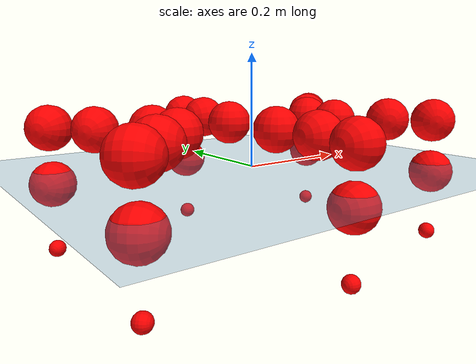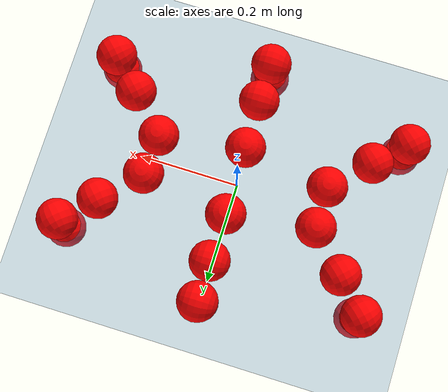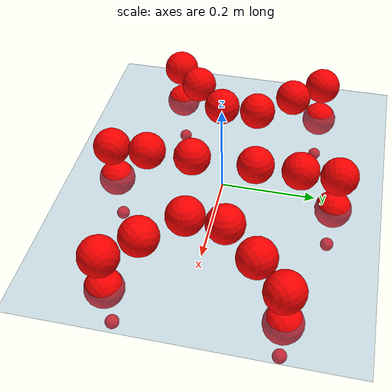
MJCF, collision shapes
<mujoco model="Golem">
  <compiler angle="radian" assetdir="assets" balanceinertia="true" inertiafromgeom="false"/>

  <option timestep="0.005" density="1.2" viscosity="2e-05"/>

  <size nkey="1"/>

  <visual>
    <quality shadowsize="8192"/>
    <map shadowclip="0.5"/>
  </visual>

  <default>
    <default class="/">
      <joint armature="0.01" damping="0.01" frictionloss="0.01"/>
      <geom contype="0" conaffinity="0" group="1" solref="-1000 -80"/>
      <site size="0.01 0.005 0.005" group="5"/>
      <general forcelimited="true" biastype="affine" gainprm="25" biasprm="0 -25 -0.5"/>
      <default class="visual">
        <geom type="mesh" group="2"/>
      </default>
      <default class="collision">
        <geom group="3"/>
      </default>
      <default class="foot">
        <geom size="0.01 0 0" condim="6" group="4" priority="1" solimp="0.015 1 0.01"/>
      </default>
      <default class="reward_collision_sphere">
        <geom group="5" rgba="1 0 0 1"/>
      </default>
    </default>
  </default>

  <asset>
    <texture type="skybox" colorspace="auto" name="//unnamed_texture_0" builtin="gradient" rgb1="0.95 0.95 0.95" rgb2="0.95 0.95 0.95" width="100" height="600"/>
    <texture type="2d" colorspace="auto" name="texplane" builtin="checker" rgb1="0.345 0.575 0.748" rgb2="0.345 0.575 0.748" markrgb="1 1 1" width="512" height="512"/>
    <material name="MatPlane" class="/" texture="texplane" texuniform="true" texrepeat="2 2" specular="0.9"/>
    <mesh name="body" class="/" file="body.stl" scale="0.001 0.001 0.001"/>
    <mesh name="coxa" class="/" file="coxa.stl" scale="0.001 0.001 0.001"/>
    <mesh name="femur" class="/" file="femur.stl" scale="0.001 0.001 0.001"/>
    <mesh name="tibia" class="/" file="tibia.stl" scale="0.001 0.001 0.001"/>
    <mesh name="tarsus" class="/" file="tarsus.stl" scale="0.001 0.001 0.001"/>
  </asset>

  <worldbody>
    <geom name="floor" class="/" size="100 100 0.125" type="plane" group="0" material="MatPlane"/>
    <light name="toplight_shadow" class="/" pos="0 0 5" dir="0.0990148 0.0990148 -0.990148" type="directional" ambient="0.04 0.04 0.04" diffuse="0.55 0.55 0.55" specular="0.12 0.12 0.12"/>
    <light name="toplight_fill" class="/" pos="0 0 5" dir="0.0990148 0.0990148 -0.990148" type="directional" castshadow="false" ambient="0.04 0.04 0.04" diffuse="0.3 0.3 0.3" specular="0.08 0.08 0.08"/>
    <body name="trunk" pos="0.00112553 0.00264355 0.00238799" quat="1 -4.86506e-05 -1.97848e-05 -0.000124757">
      <inertial pos="-0.000998647 7.48935e-05 -0.00393501" quat="0.99999 -0.00401507 0.000459579 -0.00203018" mass="3.88282" diaginertia="0.0157291 0.00267532 0.0178993"/>
      <joint name="//unnamed_joint_0" type="free"/>
      <geom name="//unnamed_geom_1" class="/" pos="0 0 0.0718131" quat="1 0 0 0" type="mesh" rgba="0.9 0.9 0.9 1" mesh="body"/>
      <site name="imu" class="/" pos="0.14758 -0.0128786 0.117507" size="0.00993067"/>
      <camera name="track" class="/" pos="0 -1.52615 0" quat="0.707107 0.707107 0 0" mode="trackcom"/>
      <camera name="ego_camera" class="/" pos="0.142226 0 0.112208" quat="-0.5 -0.5 0.5 0.5"/>
      <body name="coxa_RR" pos="-0.193862 -0.0613026 0.0745535" quat="0.381674 0.000692909 4.68062e-05 -0.924297">
        <inertial pos="-0.000161185 -0.00227345 0.00266794" quat="0.999948 0.00553577 -0.00236944 0.00823729" mass="0.201786" diaginertia="0.0154993 0.00254117 0.017818"/>
        <joint name="coxa_joint_RR" class="/" pos="0 0 0" axis="-0.00248511 0.000117065 -0.999997" stiffness="0.00359663" range="-3.08323 3.13299" armature="0.0100996" damping="0.00293715" frictionloss="0.0104347"/>
        <geom name="//unnamed_geom_2" class="/" type="mesh" rgba="0.2 0.2 0.2 1" mesh="coxa"/>
        <geom name="//unnamed_geom_3" class="reward_collision_sphere" size="0.0397227" pos="-0.0328215 0 0"/>
        <body name="femur_RR" pos="0.0669828 9.98358e-05 -0.000243632" quat="0.499521 -0.499355 0.50092 0.500202">
          <inertial pos="-0.00286742 -0.00095628 0.000220315" quat="1 -4.63583e-06 -2.94307e-05 3.84794e-05" mass="0.200224" diaginertia="0.0160453 0.00266185 0.0182688"/>
          <joint name="femur_joint_RR" class="/" pos="0 0 0" axis="-0.00136519 0.00339293 -0.999993" stiffness="0.00836069" range="-3.19195 3.1854" armature="0.00851815" damping="0.000347908" frictionloss="0.00992042"/>
          <geom name="//unnamed_geom_4" class="/" type="mesh" rgba="0.9 0.9 0.9 1" mesh="femur"/>
          <geom name="//unnamed_geom_5" class="reward_collision_sphere" size="0.0397227"/>
          <body name="tibia_RR" pos="0.0018705 -0.0817612 -0.000865529" quat="0.00029528 1 0.000137313 -7.11403e-05">
            <inertial pos="0.00179229 0.000653214 -0.000347817" quat="0.99994 -0.0011804 0.00718147 0.00820938" mass="0.193955" diaginertia="0.0160276 0.00274758 0.0187391"/>
            <joint name="tibia_joint_RR" class="/" pos="0 0 0" axis="0.0140285 0.000847587 0.999901" range="-3.17588 3.10242" armature="0.0103647" damping="0.021308" frictionloss="0.00944777"/>
            <geom name="//unnamed_geom_6" class="/" type="mesh" rgba="0.2 0.2 0.2 1" mesh="tibia"/>
            <geom name="//unnamed_geom_7" class="reward_collision_sphere" size="0.0397227"/>
            <body name="tarsus_RR" pos="0.0961331 -0.00212449 -0.000358374" quat="1 -8.26773e-05 0.000475127 0.000249721">
              <inertial pos="0.0696605 0.00219567 -0.00284899" quat="0.496894 0.497669 0.497445 0.507908" mass="0.204638" diaginertia="0.0156874 0.0027633 0.0182834"/>
              <joint name="tarsus_joint_RR" class="/" pos="0 0 0" axis="0.00480771 -9.68502e-05 0.999988" range="-3.09161 3.14606" armature="0.0103413" damping="0.0440793" frictionloss="0.010942"/>
              <geom name="//unnamed_geom_8" class="/" type="mesh" rgba="0.9 0.9 0.9 1" mesh="tarsus"/>
              <geom name="foot_1" class="foot" size="0.0103653" pos="0.122533 0 0" quat="0 -0.707107 0 0.707107"/>
              <geom name="//unnamed_geom_10" class="reward_collision_sphere" size="0.0397227"/>
              <geom name="//unnamed_geom_11" class="reward_collision_sphere" size="0.014896" pos="0.11761 0 0"/>
              <site name="foot_1" class="foot" pos="0.122533 0 0" quat="0 -0.707107 0 0.707107" size="0.00993067"/>
            </body>
          </body>
        </body>
      </body>
      <body name="coxa_RM" pos="0.00141613 -0.099415 0.07019" quat="0.707277 -4.84637e-05 1.9257e-06 -0.706936">
        <inertial pos="0.000857973 0.00200147 0.000666544" quat="1 -4.11669e-05 -5.43266e-05 -0.00036588" mass="0.189372" diaginertia="0.0156674 0.00259358 0.0177455"/>
        <joint name="coxa_joint_RM" class="/" pos="0 0 0" axis="0.0043099 -0.000846567 -0.99999" range="-3.12871 3.13461" armature="0.00979467" damping="0.0130783" frictionloss="0.00892313"/>
        <geom name="//unnamed_geom_12" class="/" type="mesh" rgba="0.2 0.2 0.2 1" mesh="coxa"/>
        <geom name="//unnamed_geom_13" class="reward_collision_sphere" size="0.0397227" pos="-0.0328215 0 0"/>
        <body name="femur_RM" pos="0.0644985 0.00199241 0.000725668" quat="0.500098 -0.500359 0.499921 0.499622">
          <inertial pos="-0.000708194 -0.00246649 0.00281145" quat="0.999999 0.000538409 0.00109053 -0.00061963" mass="0.200658" diaginertia="0.0153592 0.00260021 0.0179393"/>
          <joint name="femur_joint_RM" class="/" pos="0 0 0" axis="0.00146292 -0.00131883 -0.999998" range="-3.14388 3.09825" armature="0.010488" damping="0" frictionloss="0.0100427"/>
          <geom name="//unnamed_geom_14" class="/" type="mesh" rgba="0.9 0.9 0.9 1" mesh="femur"/>
          <geom name="//unnamed_geom_15" class="reward_collision_sphere" size="0.0397227"/>
          <body name="tibia_RM" pos="0.00325254 -0.0789232 -0.00109554" quat="-0.000172225 1 9.35878e-05 -0.000157258">
            <inertial pos="-0.00229814 -0.00248175 0.000869094" quat="0.999938 -0.0108262 -0.00174727 -0.00213605" mass="0.197325" diaginertia="0.0157227 0.00258625 0.0172866"/>
            <joint name="tibia_joint_RM" class="/" pos="0 0 0" axis="0.000988626 0.0030551 0.999995" range="-3.15018 3.17625" armature="0.0109616" damping="0.0226501" frictionloss="0.0110853"/>
            <geom name="//unnamed_geom_16" class="/" type="mesh" rgba="0.2 0.2 0.2 1" mesh="tibia"/>
            <geom name="//unnamed_geom_17" class="reward_collision_sphere" size="0.0397227"/>
            <body name="tarsus_RM" pos="0.0937294 -0.00102457 0.000626722" quat="1 -4.18839e-05 -2.9641e-06 8.05816e-06">
              <inertial pos="0.0663622 -0.000991538 0.00102274" quat="0.501647 0.497587 0.503342 0.497397" mass="0.202025" diaginertia="0.016436 0.00270041 0.0184355"/>
              <joint name="tarsus_joint_RM" class="/" pos="0 0 0" axis="0.00100982 0.000383724 0.999999" range="-3.13714 3.13908" armature="0.00849257" damping="0.00548683" frictionloss="0.00939919"/>
              <geom name="//unnamed_geom_18" class="/" type="mesh" rgba="0.9 0.9 0.9 1" mesh="tarsus"/>
              <geom name="foot_2" class="foot" size="0.00897318" pos="0.122533 0 0" quat="0 -0.707107 0 0.707107"/>
              <geom name="//unnamed_geom_20" class="reward_collision_sphere" size="0.0397227"/>
              <geom name="//unnamed_geom_21" class="reward_collision_sphere" size="0.014896" pos="0.11761 0 0"/>
              <site name="foot_2" class="foot" pos="0.122533 0 0" quat="0 -0.707107 0 0.707107" size="0.00993067"/>
            </body>
          </body>
        </body>
      </body>
      <body name="coxa_RF" pos="0.191585 -0.0624494 0.0727559" quat="0.923901 -0.000193714 -0.000357963 -0.382631">
        <inertial pos="0.00288505 -0.000446239 -0.000483741" quat="0.999986 -0.00382924 -0.00223799 -0.00289403" mass="0.194911" diaginertia="0.0161714 0.0025719 0.0172126"/>
        <joint name="coxa_joint_RF" class="/" pos="0 0 0" axis="-0.00185169 0.00787893 -0.999967" range="-3.1883 3.16089" armature="0.00892324" damping="0.0128728" frictionloss="0.0104182"/>
        <geom name="//unnamed_geom_22" class="/" type="mesh" rgba="0.2 0.2 0.2 1" mesh="coxa"/>
        <geom name="//unnamed_geom_23" class="reward_collision_sphere" size="0.0397227" pos="-0.0328215 0 0"/>
        <body name="femur_RF" pos="0.0663474 -0.00109032 0.00312906" quat="0.500708 -0.499517 0.500265 0.499509">
          <inertial pos="0.00119898 0.000629458 -0.00267847" quat="1 -0.000648874 0.00036528 -0.000344044" mass="0.191781" diaginertia="0.0155816 0.00268829 0.0178906"/>
          <joint name="femur_joint_RF" class="/" pos="0 0 0" axis="-0.00206624 -7.79222e-05 -0.999998" range="-3.08501 3.12749" armature="0.0112654" damping="0" frictionloss="0.0103965"/>
          <geom name="//unnamed_geom_24" class="/" type="mesh" rgba="0.9 0.9 0.9 1" mesh="femur"/>
          <geom name="//unnamed_geom_25" class="reward_collision_sphere" size="0.0397227"/>
          <body name="tibia_RF" pos="0.000770599 -0.0824642 0.000950769" quat="5.52581e-06 1 -3.67891e-07 -1.36702e-05">
            <inertial pos="0.000722183 0.00276429 -0.000231614" quat="0.999999 0.000562133 0.000861921 -0.000136633" mass="0.196674" diaginertia="0.0161507 0.00252543 0.0185113"/>
            <joint name="tibia_joint_RF" class="/" pos="0 0 0" axis="-0.00320367 0.00344249 0.999989" stiffness="0.000655669" range="-3.16123 3.14908" armature="0.0105762" damping="0.0028494" frictionloss="0.00853987"/>
            <geom name="//unnamed_geom_26" class="/" type="mesh" rgba="0.2 0.2 0.2 1" mesh="tibia"/>
            <geom name="//unnamed_geom_27" class="reward_collision_sphere" size="0.0397227"/>
            <body name="tarsus_RF" pos="0.0963947 0.00145513 0.000696649" quat="0.999999 -0.000863031 0.000687726 -0.000609361">
              <inertial pos="0.0637477 -0.00245133 0.000295493" quat="0.503619 0.502844 0.491295 0.502141" mass="0.190537" diaginertia="0.0163104 0.00253935 0.0178605"/>
              <joint name="tarsus_joint_RF" class="/" pos="0 0 0" axis="-0.00643762 -0.0121503 0.999905" stiffness="0.00673155" range="-3.09128 3.1597" armature="0.0107206" damping="0.0010063" frictionloss="0.00993312"/>
              <geom name="//unnamed_geom_28" class="/" type="mesh" rgba="0.9 0.9 0.9 1" mesh="tarsus"/>
              <geom name="foot_3" class="foot" size="0.0096476" pos="0.122533 0 0" quat="0 -0.707107 0 0.707107"/>
              <geom name="//unnamed_geom_30" class="reward_collision_sphere" size="0.0397227"/>
              <geom name="//unnamed_geom_31" class="reward_collision_sphere" size="0.014896" pos="0.11761 0 0"/>
              <site name="foot_3" class="foot" pos="0.122533 0 0" quat="0 -0.707107 0 0.707107" size="0.00993067"/>
            </body>
          </body>
        </body>
      </body>
      <body name="coxa_LR" pos="-0.195134 0.0661497 0.0734981" quat="0.382541 0.000552388 -0.000396637 0.923938">
        <inertial pos="-0.000178349 -0.00247347 0.00112256" quat="0.999902 -0.0112028 0.00139942 -0.0083041" mass="0.190306" diaginertia="0.0150365 0.00259098 0.0172898"/>
        <joint name="coxa_joint_LR" class="/" pos="0 0 0" axis="-0.00726951 -0.0104869 -0.999919" range="-3.17132 3.18686" armature="0.00864738" damping="0.00781369" frictionloss="0.0104191"/>
        <geom name="//unnamed_geom_32" class="/" type="mesh" rgba="0.2 0.2 0.2 1" mesh="coxa"/>
        <geom name="//unnamed_geom_33" class="reward_collision_sphere" size="0.0397227" pos="-0.0328215 0 0"/>
        <body name="femur_LR" pos="0.0677594 -0.00180029 -0.00353052" quat="0.500742 -0.50043 0.499943 0.498884">
          <inertial pos="0.000716984 0.000270135 -0.000638936" quat="0.999926 0.00263686 0.00966378 -0.00695926" mass="0.192355" diaginertia="0.0157289 0.00262255 0.0184357"/>
          <joint name="femur_joint_LR" class="/" pos="0 0 0" axis="0.0105577 0.0024398 0.999941" range="-3.09876 3.0827" armature="0.0109741" damping="0" frictionloss="0.0104638"/>
          <geom name="//unnamed_geom_34" class="/" type="mesh" rgba="0.9 0.9 0.9 1" mesh="femur"/>
          <geom name="//unnamed_geom_35" class="reward_collision_sphere" size="0.0397227"/>
          <body name="tibia_LR" pos="-0.000795267 -0.0842079 -0.00341783" quat="-0.000133405 0.999999 0.00104987 0.000201947">
            <inertial pos="0.00130762 -0.00197775 0.00277421" quat="0.99993 0.000353178 -0.00869707 -0.0080141" mass="0.196248" diaginertia="0.0162153 0.00264489 0.0177758"/>
            <joint name="tibia_joint_LR" class="/" pos="0 0 0" axis="0.00263267 0.000608963 -0.999996" range="-3.19651 3.18289" armature="0.00887164" damping="0.00259586" frictionloss="0.0111615"/>
            <geom name="//unnamed_geom_36" class="/" type="mesh" rgba="0.2 0.2 0.2 1" mesh="tibia"/>
            <geom name="//unnamed_geom_37" class="reward_collision_sphere" size="0.0397227"/>
            <body name="tarsus_LR" pos="0.0984176 0.000555673 0.00139025" quat="0.999999 0.000977067 0.000450487 0.000839524">
              <inertial pos="0.069007 0.000972158 0.000347035" quat="0.501791 0.491088 0.508862 0.498094" mass="0.20304" diaginertia="0.0159409 0.00265581 0.0181778"/>
              <joint name="tarsus_joint_LR" class="/" pos="0 0 0" axis="-0.00395039 0.00660447 -0.99997" range="-3.19413 3.14698" armature="0.00992811" damping="0.0276061" frictionloss="0.0086082"/>
              <geom name="//unnamed_geom_38" class="/" type="mesh" rgba="0.9 0.9 0.9 1" mesh="tarsus"/>
              <geom name="foot_4" class="foot" size="0.0101857" pos="0.122533 0 0" quat="0.707107 0 -0.707107 0"/>
              <geom name="//unnamed_geom_40" class="reward_collision_sphere" size="0.0397227"/>
              <geom name="//unnamed_geom_41" class="reward_collision_sphere" size="0.014896" pos="0.11761 0 0"/>
              <site name="foot_4" class="foot" pos="0.122533 0 0" quat="0.707107 0 -0.707107 0" size="0.00993067"/>
            </body>
          </body>
        </body>
      </body>
      <body name="coxa_LM" pos="-0.000625529 0.10116 0.0705461" quat="0.706782 0.000317832 -0.000735852 0.707431">
        <inertial pos="-0.00236491 -0.000328277 -0.00260193" quat="1 -7.23889e-05 -0.000142108 0.000533929" mass="0.190782" diaginertia="0.0149361 0.00247821 0.0181299"/>
        <joint name="coxa_joint_LM" class="/" pos="0 0 0" axis="0.00275909 0.00383425 -0.999989" range="-3.13502 3.1422" armature="0.0111788" damping="0.0035059" frictionloss="0.00866023"/>
        <geom name="//unnamed_geom_42" class="/" type="mesh" rgba="0.2 0.2 0.2 1" mesh="coxa"/>
        <geom name="//unnamed_geom_43" class="reward_collision_sphere" size="0.0397227" pos="-0.0328215 0 0"/>
        <body name="femur_LM" pos="0.0614459 -0.00232535 0.0029897" quat="0.499389 -0.500151 0.500365 0.500095">
          <inertial pos="0.00296726 0.00167782 0.00254874" quat="0.999998 -0.00176162 -6.66818e-05 0.00123817" mass="0.196186" diaginertia="0.0159954 0.00258847 0.0175207"/>
          <joint name="femur_joint_LM" class="/" pos="0 0 0" axis="-0.00120147 0.00052643 0.999999" range="-3.16192 3.083" armature="0.0108129" damping="0" frictionloss="0.0112414"/>
          <geom name="//unnamed_geom_44" class="/" type="mesh" rgba="0.9 0.9 0.9 1" mesh="femur"/>
          <geom name="//unnamed_geom_45" class="reward_collision_sphere" size="0.0397227"/>
          <body name="tibia_LM" pos="0.000944079 -0.0791532 0.000687536" quat="-0.00013327 1 -0.000208838 0.000440245">
            <inertial pos="-0.0020544 -0.00237963 0.00212003" quat="0.99995 0.00537868 0.0068717 0.0049238" mass="0.192548" diaginertia="0.0156227 0.00256337 0.0171361"/>
            <joint name="tibia_joint_LM" class="/" pos="0 0 0" axis="0.000457083 0.0132236 -0.999912" range="-3.14321 3.08565" armature="0.0102791" damping="0" frictionloss="0.00983285"/>
            <geom name="//unnamed_geom_46" class="/" type="mesh" rgba="0.2 0.2 0.2 1" mesh="tibia"/>
            <geom name="//unnamed_geom_47" class="reward_collision_sphere" size="0.0397227"/>
            <body name="tarsus_LM" pos="0.0951055 -0.00237088 0.00220845" quat="1 -0.000140343 -0.000173724 0.000249595">
              <inertial pos="0.063151 0.000637996 -0.00280967" quat="0.506725 0.502241 0.490579 0.500316" mass="0.199425" diaginertia="0.015625 0.0024562 0.0169008"/>
              <joint name="tarsus_joint_LM" class="/" pos="0 0 0" axis="0.0111315 0.00501564 -0.999925" range="-3.12938 3.08453" armature="0.00928961" damping="0.013946" frictionloss="0.00989403"/>
              <geom name="//unnamed_geom_48" class="/" type="mesh" rgba="0.9 0.9 0.9 1" mesh="tarsus"/>
              <geom name="foot_5" class="foot" size="0.0102517" pos="0.122533 0 0" quat="0.707107 0 -0.707107 0"/>
              <geom name="//unnamed_geom_50" class="reward_collision_sphere" size="0.0397227"/>
              <geom name="//unnamed_geom_51" class="reward_collision_sphere" size="0.014896" pos="0.11761 0 0"/>
              <site name="foot_5" class="foot" pos="0.122533 0 0" quat="0.707107 0 -0.707107 0" size="0.00993067"/>
            </body>
          </body>
        </body>
      </body>
      <body name="coxa_LF" pos="0.196438 0.063675 0.0734318" quat="0.923451 0.000273511 -0.00042242 0.383716">
        <inertial pos="0.000438734 0.000377565 0.00122551" quat="0.999949 -0.00324467 0.00643075 0.00708859" mass="0.199255" diaginertia="0.0151502 0.00263679 0.0170918"/>
        <joint name="coxa_joint_LF" class="/" pos="0 0 0" axis="-0.000405925 -0.0112616 -0.999937" range="-3.13756 3.1382" armature="0.00948377" damping="0.00598281" frictionloss="0.00950967"/>
        <geom name="//unnamed_geom_52" class="/" type="mesh" rgba="0.2 0.2 0.2 1" mesh="coxa"/>
        <geom name="//unnamed_geom_53" class="reward_collision_sphere" size="0.0397227" pos="-0.0328215 0 0"/>
        <body name="femur_LF" pos="0.0664441 0.00252207 0.00108031" quat="0.500353 -0.499653 0.49987 0.500123">
          <inertial pos="0.00274191 -0.000981959 0.00239633" quat="0.999993 0.000936141 0.00360331 0.00040771" mass="0.190706" diaginertia="0.0151552 0.00258578 0.01729"/>
          <joint name="femur_joint_LF" class="/" pos="0 0 0" axis="-0.00160232 0.00974309 0.999951" range="-3.14369 3.17792" armature="0.0113981" damping="0.00419492" frictionloss="0.00973075"/>
          <geom name="//unnamed_geom_54" class="/" type="mesh" rgba="0.9 0.9 0.9 1" mesh="femur"/>
          <geom name="//unnamed_geom_55" class="reward_collision_sphere" size="0.0397227"/>
          <body name="tibia_LF" pos="0.0027267 -0.0854557 -0.00103343" quat="0.000924823 0.999999 -0.000996648 -2.58846e-05">
            <inertial pos="0.000677771 0.000161912 3.11344e-05" quat="0.999998 0.00179888 -0.000845213 0.000300529" mass="0.195829" diaginertia="0.015753 0.00258952 0.0177443"/>
            <joint name="tibia_joint_LF" class="/" pos="0 0 0" axis="0.0103787 0.00681587 -0.999923" range="-3.16128 3.19253" armature="0.00864214" damping="0.009837" frictionloss="0.0101155"/>
            <geom name="//unnamed_geom_56" class="/" type="mesh" rgba="0.2 0.2 0.2 1" mesh="tibia"/>
            <geom name="//unnamed_geom_57" class="reward_collision_sphere" size="0.0397227"/>
            <body name="tarsus_LF" pos="0.0976358 0.00180226 -0.00241764" quat="1 -8.11241e-05 -0.000457911 0.000472826">
              <inertial pos="0.0632918 0.0015408 -0.000865372" quat="0.499904 0.500009 0.499997 0.50009" mass="0.190874" diaginertia="0.0154436 0.00253815 0.0180217"/>
              <joint name="tarsus_joint_LF" class="/" pos="0 0 0" axis="-0.0104796 0.00547339 -0.99993" stiffness="0.0261825" range="-3.19026 3.18778" armature="0.00999522" damping="0" frictionloss="0.0102279"/>
              <geom name="//unnamed_geom_58" class="/" type="mesh" rgba="0.9 0.9 0.9 1" mesh="tarsus"/>
              <geom name="foot_6" class="foot" size="0.0105319" pos="0.122533 0 0" quat="0.707107 0 -0.707107 0"/>
              <geom name="//unnamed_geom_60" class="reward_collision_sphere" size="0.0397227"/>
              <geom name="//unnamed_geom_61" class="reward_collision_sphere" size="0.014896" pos="0.11761 0 0"/>
              <site name="foot_6" class="foot" pos="0.122533 0 0" quat="0.707107 0 -0.707107 0" size="0.00993067"/>
            </body>
          </body>
        </body>
      </body>
    </body>
  </worldbody>

  <contact>
    <pair class="/" geom1="floor" geom2="foot_1" name="//unnamed_contact_0"/>
    <pair class="/" geom1="floor" geom2="foot_2" name="//unnamed_contact_1"/>
    <pair class="/" geom1="floor" geom2="foot_3" name="//unnamed_contact_2"/>
    <pair class="/" geom1="floor" geom2="foot_4" name="//unnamed_contact_3"/>
    <pair class="/" geom1="floor" geom2="foot_5" name="//unnamed_contact_4"/>
    <pair class="/" geom1="floor" geom2="foot_6" name="//unnamed_contact_5"/>
  </contact>

  <actuator>
    <general name="coxa_joint_RR" class="/" joint="coxa_joint_RR" forcerange="-7.62191 7.62191" gainprm="24.0105" biasprm="0 -24.0105 -0.549259"/>
    <general name="femur_joint_RR" class="/" joint="femur_joint_RR" forcerange="-6.71801 6.71801" gainprm="24.0105" biasprm="0 -24.0105 -0.549259"/>
    <general name="tibia_joint_RR" class="/" joint="tibia_joint_RR" forcerange="-6.61787 6.61787" gainprm="24.0105" biasprm="0 -24.0105 -0.549259"/>
    <general name="tarsus_joint_RR" class="/" joint="tarsus_joint_RR" forcerange="-6.5586 6.5586" gainprm="24.0105" biasprm="0 -24.0105 -0.549259"/>
    <general name="coxa_joint_RM" class="/" joint="coxa_joint_RM" forcerange="-7.23693 7.23693" gainprm="24.0105" biasprm="0 -24.0105 -0.549259"/>
    <general name="femur_joint_RM" class="/" joint="femur_joint_RM" forcerange="-7.13965 7.13965" gainprm="24.0105" biasprm="0 -24.0105 -0.549259"/>
    <general name="tibia_joint_RM" class="/" joint="tibia_joint_RM" forcerange="-6.70289 6.70289" gainprm="24.0105" biasprm="0 -24.0105 -0.549259"/>
    <general name="tarsus_joint_RM" class="/" joint="tarsus_joint_RM" forcerange="-7.18553 7.18553" gainprm="24.0105" biasprm="0 -24.0105 -0.549259"/>
    <general name="coxa_joint_RF" class="/" joint="coxa_joint_RF" forcerange="-7.39429 7.39429" gainprm="24.0105" biasprm="0 -24.0105 -0.549259"/>
    <general name="femur_joint_RF" class="/" joint="femur_joint_RF" forcerange="-7.79466 7.79466" gainprm="24.0105" biasprm="0 -24.0105 -0.549259"/>
    <general name="tibia_joint_RF" class="/" joint="tibia_joint_RF" forcerange="-7.78067 7.78067" gainprm="24.0105" biasprm="0 -24.0105 -0.549259"/>
    <general name="tarsus_joint_RF" class="/" joint="tarsus_joint_RF" forcerange="-7.80383 7.80383" gainprm="24.0105" biasprm="0 -24.0105 -0.549259"/>
    <general name="coxa_joint_LR" class="/" joint="coxa_joint_LR" forcerange="-6.49375 6.49375" gainprm="24.0105" biasprm="0 -24.0105 -0.549259"/>
    <general name="femur_joint_LR" class="/" joint="femur_joint_LR" forcerange="-7.52259 7.52259" gainprm="24.0105" biasprm="0 -24.0105 -0.549259"/>
    <general name="tibia_joint_LR" class="/" joint="tibia_joint_LR" forcerange="-7.89272 7.89272" gainprm="24.0105" biasprm="0 -24.0105 -0.549259"/>
    <general name="tarsus_joint_LR" class="/" joint="tarsus_joint_LR" forcerange="-7.11211 7.11211" gainprm="24.0105" biasprm="0 -24.0105 -0.549259"/>
    <general name="coxa_joint_LM" class="/" joint="coxa_joint_LM" forcerange="-7.73751 7.73751" gainprm="24.0105" biasprm="0 -24.0105 -0.549259"/>
    <general name="femur_joint_LM" class="/" joint="femur_joint_LM" forcerange="-7.32119 7.32119" gainprm="24.0105" biasprm="0 -24.0105 -0.549259"/>
    <general name="tibia_joint_LM" class="/" joint="tibia_joint_LM" forcerange="-6.56803 6.56803" gainprm="24.0105" biasprm="0 -24.0105 -0.549259"/>
    <general name="tarsus_joint_LM" class="/" joint="tarsus_joint_LM" forcerange="-6.51228 6.51228" gainprm="24.0105" biasprm="0 -24.0105 -0.549259"/>
    <general name="coxa_joint_LF" class="/" joint="coxa_joint_LF" forcerange="-7.45556 7.45556" gainprm="24.0105" biasprm="0 -24.0105 -0.549259"/>
    <general name="femur_joint_LF" class="/" joint="femur_joint_LF" forcerange="-6.50081 6.50081" gainprm="24.0105" biasprm="0 -24.0105 -0.549259"/>
    <general name="tibia_joint_LF" class="/" joint="tibia_joint_LF" forcerange="-7.34786 7.34786" gainprm="24.0105" biasprm="0 -24.0105 -0.549259"/>
    <general name="tarsus_joint_LF" class="/" joint="tarsus_joint_LF" forcerange="-7.29182 7.29182" gainprm="24.0105" biasprm="0 -24.0105 -0.549259"/>
  </actuator>

  <sensor>
    <gyro site="imu" name="imu_angular_velocity"/>
    <velocimeter site="imu" name="imu_linear_velocity"/>
    <framelinvel objtype="site" objname="foot_1" name="foot_1_global_linear_velocity"/>
    <framelinvel objtype="site" objname="foot_2" name="foot_2_global_linear_velocity"/>
    <framelinvel objtype="site" objname="foot_3" name="foot_3_global_linear_velocity"/>
    <framelinvel objtype="site" objname="foot_4" name="foot_4_global_linear_velocity"/>
    <framelinvel objtype="site" objname="foot_5" name="foot_5_global_linear_velocity"/>
    <framelinvel objtype="site" objname="foot_6" name="foot_6_global_linear_velocity"/>
  </sensor>

  <keyframe>
    <key name="home" qpos="0 0 0.1457 1 0 0 0 0 0 0 0 0 0 0 0 0 0 0 0 0 0 0 0 0 0 0 0 0 0 0 0"/>
  </keyframe>
</mujoco>
